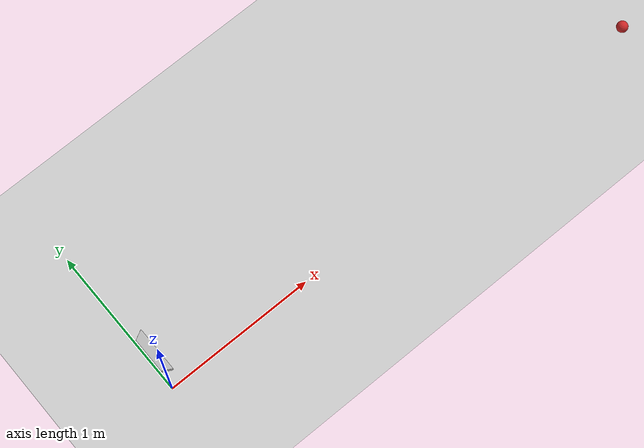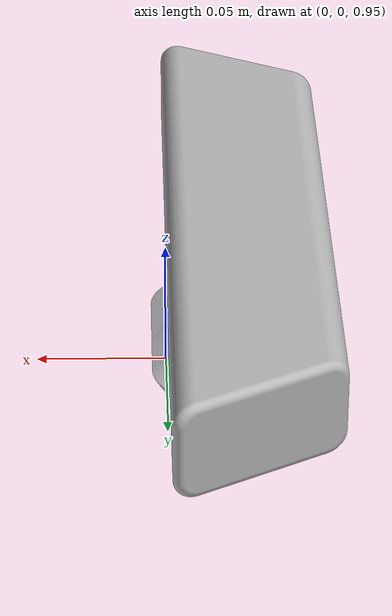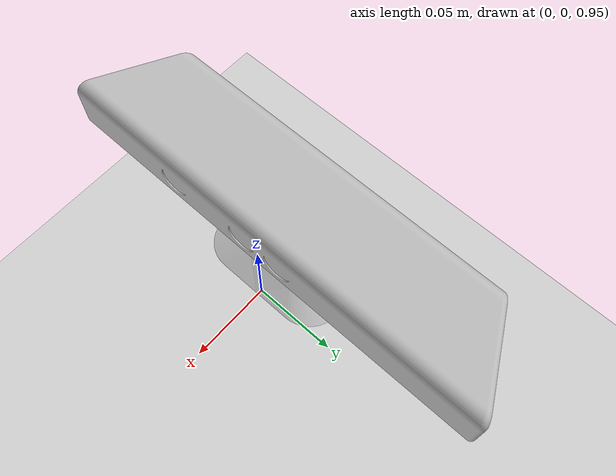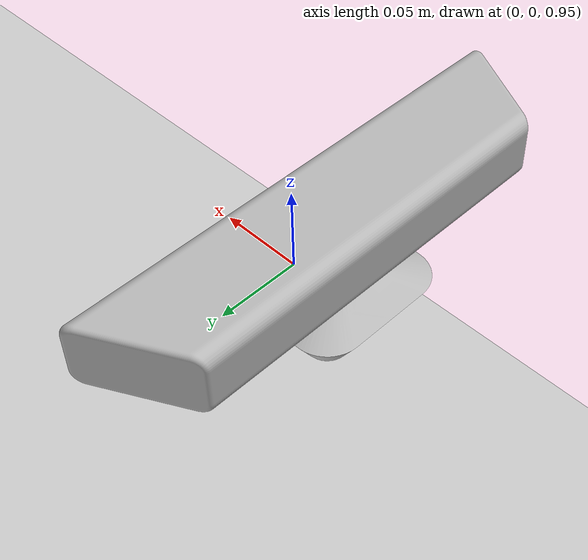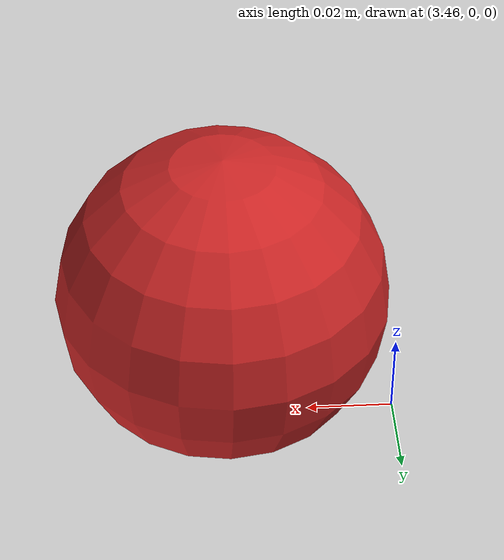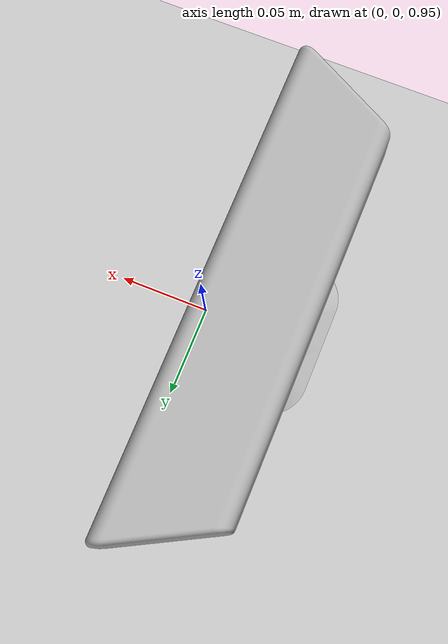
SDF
<?xml version="1.0" ?>
<sdf version="1.5">
	<world name="default">
		<include>
			<uri>model://sun</uri>
		</include>
		<include>
			<uri>model://ground_plane</uri>
		</include>

		<physics type='ode'>
			<max_step_size>0.001</max_step_size>
			<real_time_factor>1</real_time_factor>
			<real_time_update_rate>1000</real_time_update_rate>
			<gravity>0 0 -9.8</gravity>
		</physics>

		<include>
			<uri>model://kinect</uri>
			<static>true</static>
			<pose>0 0 1 0 0 0</pose>

		</include>
		<include>
			<uri>model://cricketball</uri>
			<pose>3.5 0 0 0 0 0</pose>
			<plugin name="libhappy_world_plugin1" filename="libhappy_world_plugin1.so"/>
		</include>

	</world>
</sdf>

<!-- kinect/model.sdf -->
<sdf version="1.5">
  <model name="kinect">
    <pose>0 0 0.036 0 0 0</pose>
    <link name="link">
      <inertial>
        <mass>0.1</mass>
      </inertial>
      <collision name="collision">
        <geometry>
          <box>
            <size>0.073000 0.276000 0.072000</size>
          </box>
        </geometry>
      </collision>
      <visual name="visual">
        <geometry>
          <mesh>
            <uri>model://kinect/meshes/kinect.dae</uri>
          </mesh>
        </geometry>
      </visual>
      <sensor name="camera" type="depth">
        <update_rate>20</update_rate>
        <camera>
          <horizontal_fov>1.047198</horizontal_fov>
          <image>
            <width>640</width>
            <height>480</height>
            <format>R8G8B8</format>
          </image>
          <clip>
            <near>0.05</near>
            <far>3</far>
          </clip>
        </camera>

         <plugin name="camera_plugin" filename="libgazebo_ros_openni_kinect.so">
          <baseline>0.2</baseline>
          <alwaysOn>true</alwaysOn>
          <updateRate>0.0</updateRate>
          <cameraName>camera_ir</cameraName>
          <imageTopicName>/camera/color/image_raw</imageTopicName>
          <cameraInfoTopicName>/camera/color/camera_info</cameraInfoTopicName>
          <depthImageTopicName>/camera/depth/image_raw</depthImageTopicName>
          <depthImageCameraInfoTopicName>/camera/depth/camera_info</depthImageCameraInfoTopicName>
          <pointCloudTopicName>/camera/depth/points</pointCloudTopicName>
          <frameName>camera_link</frameName>
          <pointCloudCutoff>0.5</pointCloudCutoff>
          <pointCloudCutoffMax>3.0</pointCloudCutoffMax>
          <distortionK1>0</distortionK1>
          <distortionK2>0</distortionK2>
          <distortionK3>0</distortionK3>
          <distortionT1>0</distortionT1>
          <distortionT2>0</distortionT2>
          <CxPrime>0</CxPrime>
          <Cx>0</Cx>
          <Cy>0</Cy>
          <focalLength>0</focalLength>
          <hackBaseline>0</hackBaseline>
        </plugin>

      </sensor>
    </link>
  </model>
</sdf>

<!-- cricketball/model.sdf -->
<sdf version="1.5">
  <model name="cricket_ball">
    <link name="link">
      <pose>0 0 0.0375 0 0 0</pose>
      <inertial>
        <mass>0.1467</mass>
        <inertia>
          <ixx>8.251875e-05</ixx>
          <ixy>0</ixy>
          <ixz>0</ixz>
          <iyy>8.251875e-05</iyy>
          <iyz>0</iyz>
          <izz>8.251875e-05</izz>
        </inertia>
      </inertial>

      <collision name="collision">
        <geometry>
          <sphere>
            <radius>0.0375</radius>
          </sphere>
        </geometry>
        <surface>
          <bounce>
            <restitution_coefficient>0.9</restitution_coefficient>
            <threshold>0.001</threshold>
          </bounce>
          <contact>
            <!-- Red Pine coefficients for longitudinal axis of the wood
                 according to:
                 http://www.fpl.fs.fed.us/documnts/fplgtr/fplgtr113/ch04.pdf -->
            <poissons_ratio>0.347</poissons_ratio>
            <elastic_modulus>8.8e+09</elastic_modulus>
            <ode>
              <kp>100000</kp>
              <kd>100</kd>
              <max_vel>100.0</max_vel>
              <min_depth>0.001</min_depth>
            </ode>
          </contact>
        </surface>
      </collision>

      <visual name="visual">
        <geometry>
          <sphere>
            <radius>0.0375</radius>
          </sphere>
        </geometry>
        <material>
          <script>
            <uri>file://media/materials/scripts/gazebo.material</uri>
            <name>Gazebo/Red</name>
          </script>
        </material>
      </visual>

      <!-- approximate rolling friction -->
      <velocity_decay>
        <linear>0.00</linear>
        <angular>0.005</angular>
      </velocity_decay>
    </link>
  </model>
</sdf>
